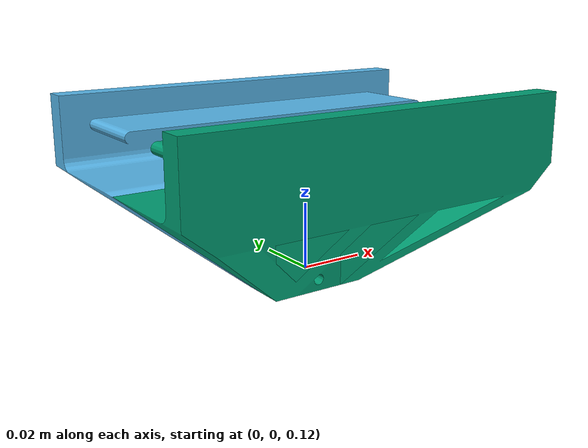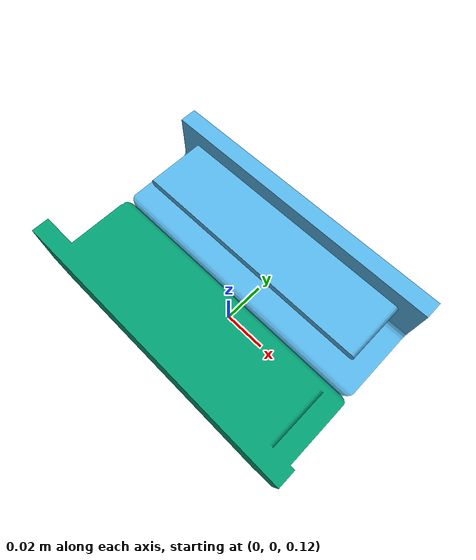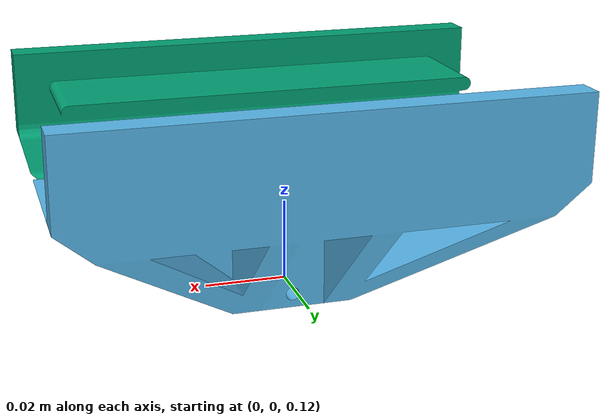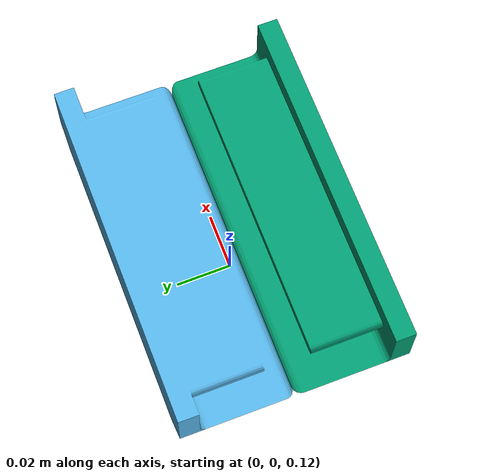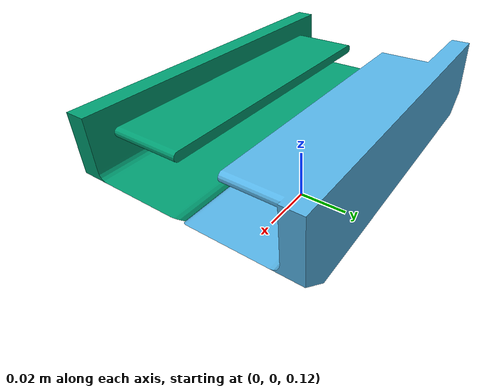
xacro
<?xml version="1.0"?>
<robot name="gripper_placer"
       xmlns:xacro="http://ros.org/wiki/xacro">

  <xacro:arg name="with_gripper_instead_of_forks" default="true" />
  <xacro:if value="$(arg with_gripper_instead_of_forks)">
    <xacro:property name="tool_offset_z" value="0.11485" />
    <xacro:property name="tool_rotation_z" value="0" />
    <!--xacro:property name="tool_stl_path" value="package://hydra/models/gripper_placer/meshes/gripper_pad_v2.stl" /-->
    <xacro:property name="tool_stl_path" value="package://hydra/models/gripper_placer/meshes/gripper_pad_slot_version.stl" />
  </xacro:if>
  <xacro:unless value="$(arg with_gripper_instead_of_forks)">
    <xacro:property name="tool_offset_z" value="0" />
    <xacro:property name="tool_rotation_z" value="${pi/2}" />
    <xacro:property name="tool_stl_path" value="package://hydra/models/gripper_placer/meshes/forks.stl" />
  </xacro:unless>

  <!-- Switch between EffortJointInterface and PositionJointInterface, still requires change in yaml files -->
  <xacro:property name="using_position_not_effort" value="false" />

  <!-- Constants for gripper joint controllers -->
  <xacro:property name="effort_limit" value="5000" />
  <xacro:property name="gripper_friction" value="100" />
  <xacro:property name="gripper_min_depth" value="0.001" />  <!-- Default is 0 -->
  <xacro:property name="gripper_max_vel" value="0.01" />  <!-- Default is 0.01 -->

  <!-- Variable for the scale used when importing STL -->
  <xacro:property name="stl_scale" value="0.0254" />

  <!-- Phantom link for center of gripper -->
  <link name="gripper_center" >
    <inertial>
      <mass value="0.01"/>
      <inertia ixx="0.0001" ixy="0.0" ixz="0.0" iyy="0.0001" iyz="0.0" izz="0.0001"/>
    </inertial>
  </link>

  <!-- One side of gripper -->
  <link name="side_p" >
    <visual>
      <origin xyz="0 0 ${tool_offset_z}" rpy="0 0 ${tool_rotation_z}" />
      <geometry>
	<mesh filename="${tool_stl_path}" scale="${stl_scale} ${stl_scale} ${stl_scale}" />
      </geometry>
    </visual>
    <collision>
      <origin xyz="0 0 ${tool_offset_z}" rpy="0 0 ${tool_rotation_z}" />
      <geometry>
	<mesh filename="${tool_stl_path}" scale="${stl_scale} ${stl_scale} ${stl_scale}" />
      </geometry>
    </collision>
    <inertial>
      <mass value="0.01" />
      <inertia ixx="0.01" ixy="0.0" ixz="0.0" iyy="0.02" iyz="0.0" izz="0.02" />
    </inertial>
  </link>

  <!-- Second side of gripper -->
  <xacro:if value="$(arg with_gripper_instead_of_forks)">
    <link name="side_d" >
      <visual>
	<origin xyz="0 0 ${tool_offset_z}" rpy="0 0 ${pi}" />
	<geometry>
	  <mesh filename="${tool_stl_path}" scale="${stl_scale} ${stl_scale} ${stl_scale}" />
	</geometry>
      </visual>
      <collision>
	<origin xyz="0 0 ${tool_offset_z}" rpy="0 0 ${pi}" />
	<geometry>
	  <mesh filename="${tool_stl_path}" scale="${stl_scale} ${stl_scale} ${stl_scale}" />
	</geometry>
      </collision>
      <inertial>
	<mass value="0.01" />
	<inertia ixx="0.01" ixy="0.0" ixz="0.0" iyy="0.02" iyz="0.0" izz="0.02" />
      </inertial>
    </link>

    <!-- Prismatic joint -->
    <joint name="gripper_joint_p" type="prismatic">
      <origin xyz="0 0 0" rpy="0 0 0" />
      <axis xyz="0 1 0" />
      <parent link="gripper_center" />
      <child link="side_p" />
      <limit effort="${effort_limit}" lower="-100" upper="100" velocity="0.5"/>
    </joint>

    <joint name="gripper_joint_d" type="prismatic">
      <origin xyz="0 0 0" rpy="0 0 0" />
      <axis xyz="0 1 0" />
      <parent link="gripper_center" />
      <child link="side_d" />
      <limit effort="${effort_limit}" lower="-100" upper="100" velocity="0.5"/>
    </joint>

    <!-- Prismatic joint -->

    <!-- Transmission for ROS control -->
    <xacro:if value="${using_position_not_effort == 'true'}">
      <transmission name="gripper_joint_transmission_p">
	<type>transmission_interface/SimpleTransmission</type>
	<joint name="gripper_joint_p">
	  <hardwareInterface>hardware_interface/PositionJointInterface</hardwareInterface>
	</joint>
	<actuator name="gripper_joint_motor_p">
	  <hardwareInterface>hardware_interface/PositionJointInterface</hardwareInterface>
	  <mechanicalReduction>1</mechanicalReduction>
	</actuator>
      </transmission>

      <transmission name="gripper_joint_transmission_d">
	<type>transmission_interface/SimpleTransmission</type>
	<joint name="gripper_joint_d">
	  <hardwareInterface>hardware_interface/PositionJointInterface</hardwareInterface>
	</joint>
	<actuator name="gripper_joint_motor_d">
	  <hardwareInterface>hardware_interface/PositionJointInterface</hardwareInterface>
	  <mechanicalReduction>1</mechanicalReduction>
	</actuator>
      </transmission>
    </xacro:if>  <!-- End if for using_position_not_effort -->

    <xacro:if value="${using_position_not_effort == 'false'}">
      <transmission name="gripper_joint_transmission_p">
	<type>transmission_interface/SimpleTransmission</type>
	<joint name="gripper_joint_p">
	  <hardwareInterface>hardware_interface/EffortJointInterface</hardwareInterface>
	</joint>
	<actuator name="gripper_joint_motor_p">
	  <hardwareInterface>hardware_interface/EffortJointInterface</hardwareInterface>
	  <mechanicalReduction>1</mechanicalReduction>
	</actuator>
      </transmission>

      <transmission name="gripper_joint_transmission_d">
	<type>transmission_interface/SimpleTransmission</type>
	<joint name="gripper_joint_d">
	  <hardwareInterface>hardware_interface/EffortJointInterface</hardwareInterface>
	</joint>
	<actuator name="gripper_joint_motor_d">
	  <hardwareInterface>hardware_interface/EffortJointInterface</hardwareInterface>
	  <mechanicalReduction>1</mechanicalReduction>
	</actuator>
      </transmission>
    </xacro:if>  <!-- End branch for !using_position_not_effort -->

    <gazebo reference="side_d">
      <kp>1e7</kp>
      <kd>1e3</kd>
      <maxVel>0.0</maxVel>  <!-- Default is 0.01 -->
      <minDepth>0.0001</minDepth>
      <mu1>1000</mu1>
      <mu2>1000</mu2>
      <fdir1>0.0 0.0 0.0</fdir1>
    </gazebo>

  </xacro:if>  <!-- End branch for with_gripper_instead_of_forks -->

  <!-- Gazebo tag for hopefully changing physics engine properties to work -->
  <gazebo reference="side_p">
    <kp>1e7</kp>
    <kd>1e3</kd>
    <maxVel>0.0</maxVel>  <!-- Default is 0.01 -->
    <minDepth>0.0001</minDepth>
    <mu1>1000</mu1>
    <mu2>1000</mu2>
    <fdir1>0.0 0.0 0.0</fdir1>
  </gazebo>

  <xacro:unless value="$(arg with_gripper_instead_of_forks)">
    <!-- Fixed joint for forks -->
    <joint name="gripper_joint_p" type="fixed">
      <origin xyz="0 0 0" rpy="0 0 0" />
      <parent link="gripper_center" />
      <child link="side_p" />
    </joint>
  </xacro:unless>

</robot>
